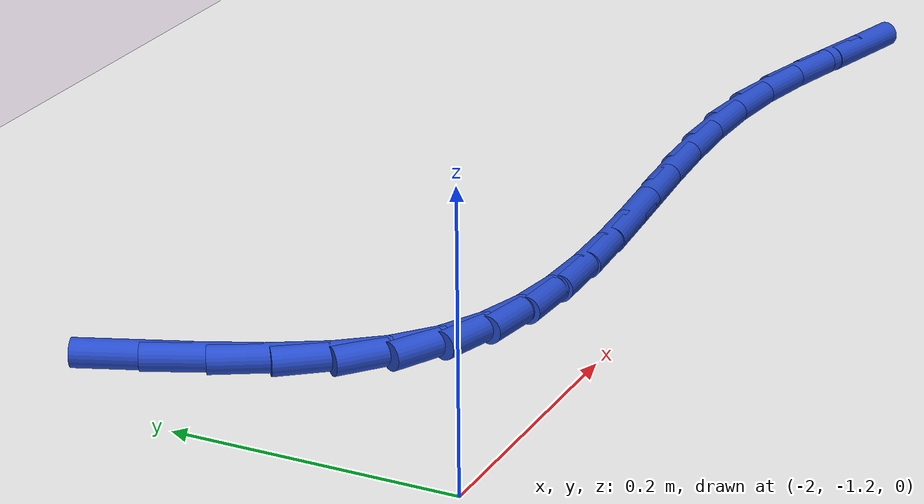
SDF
<sdf version="1.6">
 <world name="default">
  <model name="ground_plane">
   <static>1</static>
   <link name="link">
    <collision name="collision">
     <geometry><plane><normal>0 0 1</normal><size>100 100</size></plane></geometry>
     <surface><friction><ode><mu>100</mu><mu2>50</mu2></ode></friction></surface>
    </collision>
    <visual name="visual">
     <cast_shadows>0</cast_shadows>
     <geometry><plane><normal>0 0 1</normal><size>100 100</size></plane></geometry>
     <material>
      <script><uri>file://media/materials/scripts/gazebo.material</uri><name>Gazebo/WhiteGlow</name></script>
     </material>
    </visual>
   </link>
  </model>
  <model name="line">
   <link name="link_108">
    <pose>-1.933126723956542 -0.9298557449587018 0.01 0 1.57 -1.2122586625435408</pose>
    <collision name="collision">
     <geometry><cylinder><radius>0.01</radius><length>0.08</length></cylinder></geometry>
    </collision>
    <visual name="visual">
     <material>
      <script><name>Gazebo/Blue</name><uri>file://media/materials/scripts/gazebo.material</uri></script>
     </material>
     <geometry><cylinder><radius>0.01</radius><length>0.08</length></cylinder></geometry>
    </visual>
   </link>
   <link name="link_109">
    <pose>-1.9171080997069943 -0.9726023693159841 0.01 0 1.57 -1.1612961282283414</pose>
    <collision name="collision">
     <geometry><cylinder><radius>0.01</radius><length>0.08</length></cylinder></geometry>
    </collision>
    <visual name="visual">
     <material>
      <script><name>Gazebo/Blue</name><uri>file://media/materials/scripts/gazebo.material</uri></script>
     </material>
     <geometry><cylinder><radius>0.01</radius><length>0.08</length></cylinder></geometry>
    </visual>
   </link>
   <link name="link_110">
    <pose>-1.8998004123734344 -1.0124784228473693 0.01 0 1.57 -1.0676404747008688</pose>
    <collision name="collision">
     <geometry><cylinder><radius>0.01</radius><length>0.08</length></cylinder></geometry>
    </collision>
    <visual name="visual">
     <material>
      <script><name>Gazebo/Blue</name><uri>file://media/materials/scripts/gazebo.material</uri></script>
     </material>
     <geometry><cylinder><radius>0.01</radius><length>0.08</length></cylinder></geometry>
    </visual>
   </link>
   <link name="link_111">
    <pose>-1.8801701623052367 -1.0481433760506662 0.01 0 1.57 -0.9188203626276851</pose>
    <collision name="collision">
     <geometry><cylinder><radius>0.01</radius><length>0.08</length></cylinder></geometry>
    </collision>
    <visual name="visual">
     <material>
      <script><name>Gazebo/Blue</name><uri>file://media/materials/scripts/gazebo.material</uri></script>
     </material>
     <geometry><cylinder><radius>0.01</radius><length>0.08</length></cylinder></geometry>
    </visual>
   </link>
   <link name="link_112">
    <pose>-1.8571838498517723 -1.0782566994236835 0.01 0 1.57 -0.7071053586595186</pose>
    <collision name="collision">
     <geometry><cylinder><radius>0.01</radius><length>0.08</length></cylinder></geometry>
    </collision>
    <visual name="visual">
     <material>
      <script><name>Gazebo/Blue</name><uri>file://media/materials/scripts/gazebo.material</uri></script>
     </material>
     <geometry><cylinder><radius>0.01</radius><length>0.08</length></cylinder></geometry>
    </visual>
   </link>
   <link name="link_113">
    <pose>-1.8298813531937685 -1.1015869004399588 0.01 0 1.57 -0.4828977541649808</pose>
    <collision name="collision">
     <geometry><cylinder><radius>0.01</radius><length>0.08</length></cylinder></geometry>
    </collision>
    <visual name="visual">
     <material>
      <script><name>Gazebo/Blue</name><uri>file://media/materials/scripts/gazebo.material</uri></script>
     </material>
     <geometry><cylinder><radius>0.01</radius><length>0.08</length></cylinder></geometry>
    </visual>
   </link>
   <link name="link_114">
    <pose>-1.7981807757152024 -1.1182074995231877 0.01 0 1.57 -0.2956793770958877</pose>
    <collision name="collision">
     <geometry><cylinder><radius>0.01</radius><length>0.08</length></cylinder></geometry>
    </collision>
    <visual name="visual">
     <material>
      <script><name>Gazebo/Blue</name><uri>file://media/materials/scripts/gazebo.material</uri></script>
     </material>
     <geometry><cylinder><radius>0.01</radius><length>0.08</length></cylinder></geometry>
    </visual>
   </link>
   <link name="link_115">
    <pose>-1.7625790217292765 -1.1290520957026504 0.01 0 1.57 -0.15310040916247922</pose>
    <collision name="collision">
     <geometry><cylinder><radius>0.01</radius><length>0.08</length></cylinder></geometry>
    </collision>
    <visual name="visual">
     <material>
      <script><name>Gazebo/Blue</name><uri>file://media/materials/scripts/gazebo.material</uri></script>
     </material>
     <geometry><cylinder><radius>0.01</radius><length>0.08</length></cylinder></geometry>
    </visual>
   </link>
   <link name="link_116">
    <pose>-1.7235832056509457 -1.1350694598735185 0.01 0 1.57 -0.051024486768066465</pose>
    <collision name="collision">
     <geometry><cylinder><radius>0.01</radius><length>0.08</length></cylinder></geometry>
    </collision>
    <visual name="visual">
     <material>
      <script><name>Gazebo/Blue</name><uri>file://media/materials/scripts/gazebo.material</uri></script>
     </material>
     <geometry><cylinder><radius>0.01</radius><length>0.08</length></cylinder></geometry>
    </visual>
   </link>
   <link name="link_117">
    <pose>-1.6817004418951615 -1.1372083629309637 0.01 0 1.57 0.017863909797607942</pose>
    <collision name="collision">
     <geometry><cylinder><radius>0.01</radius><length>0.08</length></cylinder></geometry>
    </collision>
    <visual name="visual">
     <material>
      <script><name>Gazebo/Blue</name><uri>file://media/materials/scripts/gazebo.material</uri></script>
     </material>
     <geometry><cylinder><radius>0.01</radius><length>0.08</length></cylinder></geometry>
    </visual>
   </link>
   <link name="link_118">
    <pose>-1.6374378448768774 -1.136417575770157 0.01 0 1.57 0.060005636904039435</pose>
    <collision name="collision">
     <geometry><cylinder><radius>0.01</radius><length>0.08</length></cylinder></geometry>
    </collision>
    <visual name="visual">
     <material>
      <script><name>Gazebo/Blue</name><uri>file://media/materials/scripts/gazebo.material</uri></script>
     </material>
     <geometry><cylinder><radius>0.01</radius><length>0.08</length></cylinder></geometry>
    </visual>
   </link>
   <link name="link_119">
    <pose>-1.5913025290110454 -1.1336458692862694 0.01 0 1.57 0.07990908350170998</pose>
    <collision name="collision">
     <geometry><cylinder><radius>0.01</radius><length>0.08</length></cylinder></geometry>
    </collision>
    <visual name="visual">
     <material>
      <script><name>Gazebo/Blue</name><uri>file://media/materials/scripts/gazebo.material</uri></script>
     </material>
     <geometry><cylinder><radius>0.01</radius><length>0.08</length></cylinder></geometry>
    </visual>
   </link>
   <link name="link_120">
    <pose>-1.5438016087126194 -1.1298420143744727 0.01 0 1.57 0.08020967485740634</pose>
    <collision name="collision">
     <geometry><cylinder><radius>0.01</radius><length>0.08</length></cylinder></geometry>
    </collision>
    <visual name="visual">
     <material>
      <script><name>Gazebo/Blue</name><uri>file://media/materials/scripts/gazebo.material</uri></script>
     </material>
     <geometry><cylinder><radius>0.01</radius><length>0.08</length></cylinder></geometry>
    </visual>
   </link>
   <link name="link_121">
    <pose>-1.49544219839655 -1.1259547819299383 0.01 0 1.57 0.06195694501701195</pose>
    <collision name="collision">
     <geometry><cylinder><radius>0.01</radius><length>0.08</length></cylinder></geometry>
    </collision>
    <visual name="visual">
     <material>
      <script><name>Gazebo/Blue</name><uri>file://media/materials/scripts/gazebo.material</uri></script>
     </material>
     <geometry><cylinder><radius>0.01</radius><length>0.08</length></cylinder></geometry>
    </visual>
   </link>
   <link name="link_122">
    <pose>-1.4467314124777928 -1.1229329428478374 0.01 0 1.57 0.024867154993218486</pose>
    <collision name="collision">
     <geometry><cylinder><radius>0.01</radius><length>0.08</length></cylinder></geometry>
    </collision>
    <visual name="visual">
     <material>
      <script><name>Gazebo/Blue</name><uri>file://media/materials/scripts/gazebo.material</uri></script>
     </material>
     <geometry><cylinder><radius>0.01</radius><length>0.08</length></cylinder></geometry>
    </visual>
   </link>
   <link name="link_123">
    <pose>-1.398176365371299 -1.1217252680233412 0.01 0 1.57 -0.032462784351056706</pose>
    <collision name="collision">
     <geometry><cylinder><radius>0.01</radius><length>0.08</length></cylinder></geometry>
    </collision>
    <visual name="visual">
     <material>
      <script><name>Gazebo/Blue</name><uri>file://media/materials/scripts/gazebo.material</uri></script>
     </material>
     <geometry><cylinder><radius>0.01</radius><length>0.08</length></cylinder></geometry>
    </visual>
   </link>
   <link name="link_124">
    <pose>-1.3502841714920222 -1.123280528351621 0.01 0 1.57 -0.11201442638554503</pose>
    <collision name="collision">
     <geometry><cylinder><radius>0.01</radius><length>0.08</length></cylinder></geometry>
    </collision>
    <visual name="visual">
     <material>
      <script><name>Gazebo/Blue</name><uri>file://media/materials/scripts/gazebo.material</uri></script>
     </material>
     <geometry><cylinder><radius>0.01</radius><length>0.08</length></cylinder></geometry>
    </visual>
   </link>
   <link name="link_125">
    <pose>-1.3035592295923781 -1.1285363965247406 0.01 0 1.57 -0.19634279985153968</pose>
    <collision name="collision">
     <geometry><cylinder><radius>0.01</radius><length>0.08</length></cylinder></geometry>
    </collision>
    <visual name="visual">
     <material>
      <script><name>Gazebo/Blue</name><uri>file://media/materials/scripts/gazebo.material</uri></script>
     </material>
     <geometry><cylinder><radius>0.01</radius><length>0.08</length></cylinder></geometry>
    </visual>
   </link>
   <link name="link_126">
    <pose>-1.2582882797441406 -1.13754103108718 0.01 0 1.57 -0.2514032982310713</pose>
    <collision name="collision">
     <geometry><cylinder><radius>0.01</radius><length>0.08</length></cylinder></geometry>
    </collision>
    <visual name="visual">
     <material>
      <script><name>Gazebo/Blue</name><uri>file://media/materials/scripts/gazebo.material</uri></script>
     </material>
     <geometry><cylinder><radius>0.01</radius><length>0.08</length></cylinder></geometry>
    </visual>
   </link>
   <link name="link_127">
    <pose>-1.2143847801685277 -1.1488170852090123 0.01 0 1.57 -0.27247619272682666</pose>
    <collision name="collision">
     <geometry><cylinder><radius>0.01</radius><length>0.08</length></cylinder></geometry>
    </collision>
    <visual name="visual">
     <material>
      <script><name>Gazebo/Blue</name><uri>file://media/materials/scripts/gazebo.material</uri></script>
     </material>
     <geometry><cylinder><radius>0.01</radius><length>0.08</length></cylinder></geometry>
    </visual>
   </link>
   <link name="link_128">
    <pose>-1.171725480869356 -1.1607371951686705 0.01 0 1.57 -0.2574510911258702</pose>
    <collision name="collision">
     <geometry><cylinder><radius>0.01</radius><length>0.08</length></cylinder></geometry>
    </collision>
    <visual name="visual">
     <material>
      <script><name>Gazebo/Blue</name><uri>file://media/materials/scripts/gazebo.material</uri></script>
     </material>
     <geometry><cylinder><radius>0.01</radius><length>0.08</length></cylinder></geometry>
    </visual>
   </link>
  </model>
 </world>
</sdf>
